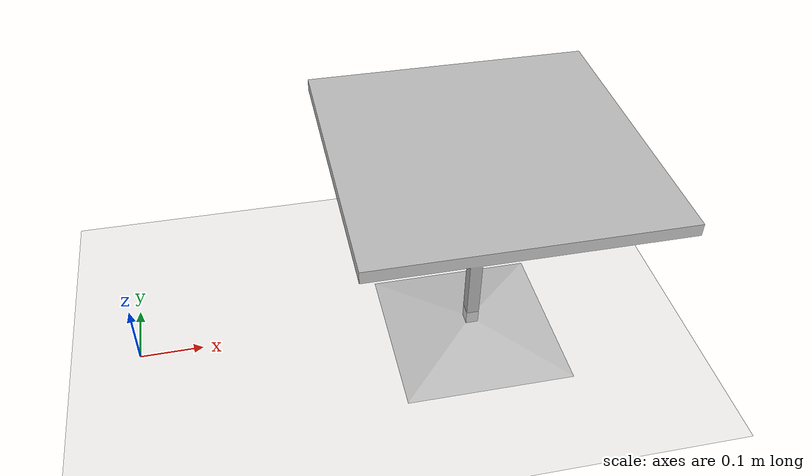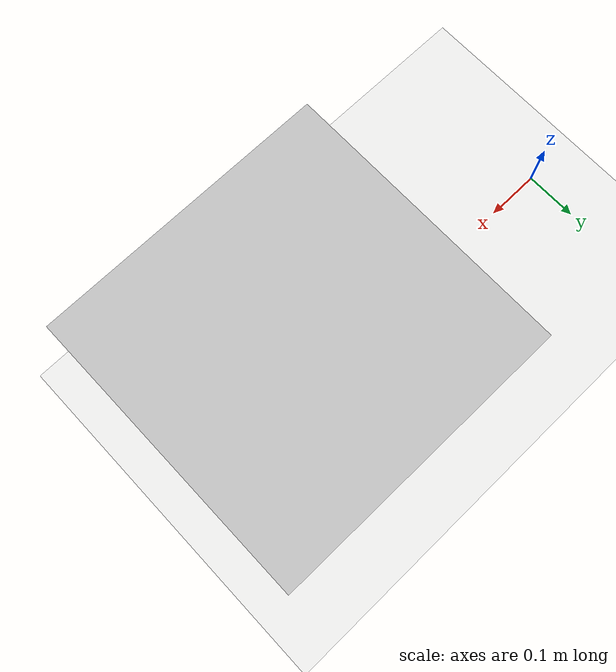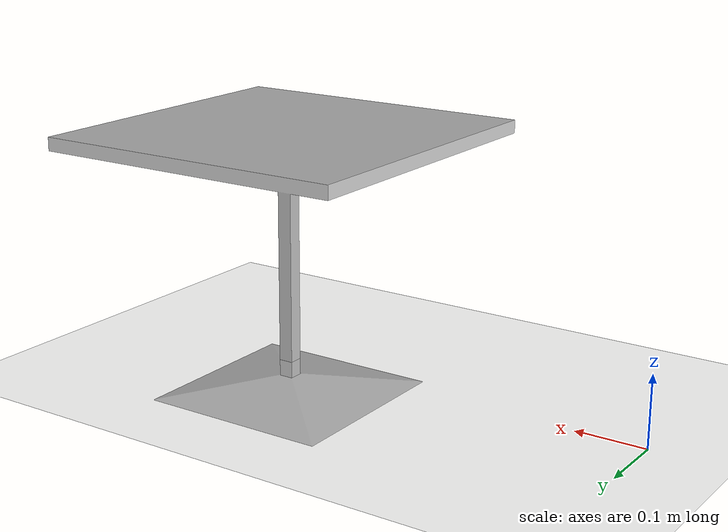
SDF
<?xml version="1.0" ?>
<sdf version="1.5">
  <world name="default">
    <include>
      <uri>model://ground_plane</uri>
    </include>
    <include>
      <uri>model://sun</uri>
    </include>
    <include>
      <uri>model://small_cafe_table</uri>
      <name>table1</name>
      <pose>0.55 0 -0.05 0 0 0</pose>
    </include>
    <physics type="ode">
      <real_time_update_rate>0.000000</real_time_update_rate>
      <max_step_size>0.001</max_step_size>
    </physics>
  </world>
</sdf>

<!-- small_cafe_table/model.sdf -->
<sdf version="1.5">
  <model name="small_cafe_table">
    <static>true</static>
    <link name="link">

      <collision name="base">
        <pose>0 0 0 0 0 0</pose>
        <geometry>
          <mesh>
            <uri>model://cafe_table/meshes/cafe_table.dae</uri>
            <scale>0.5 0.5 0.5</scale>
          </mesh>
        </geometry>
      </collision>

      <visual name="visual">
        <geometry>
          <mesh>
            <uri>model://cafe_table/meshes/cafe_table.dae</uri>
            <scale>0.5 0.5 0.5</scale>
          </mesh>
        </geometry>
      </visual>
    </link>
  </model>
</sdf>
